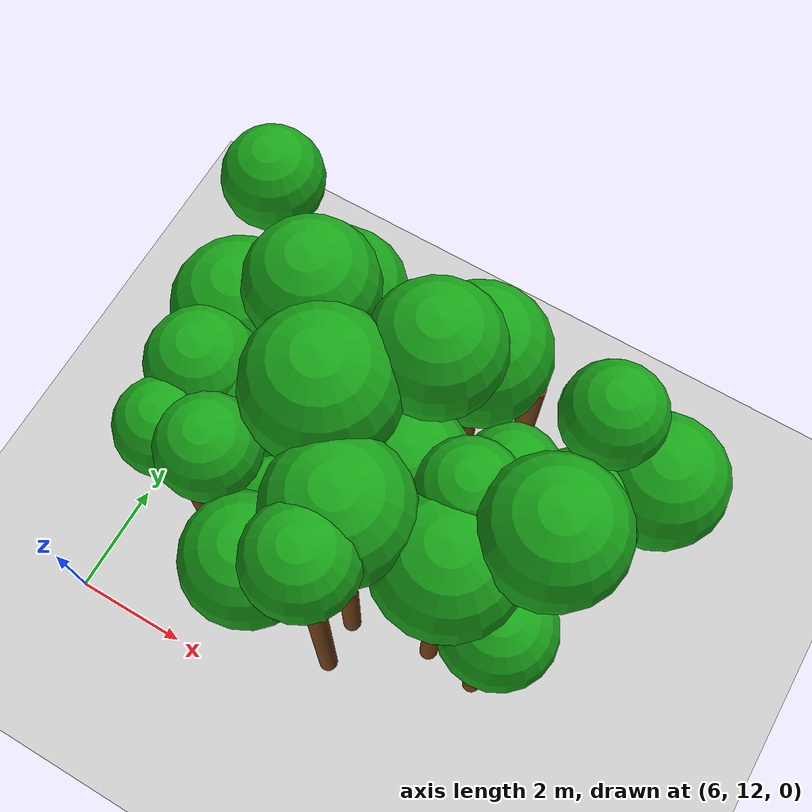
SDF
<sdf version="1.6">
 <world name="forest_world">
  <include><uri>model://sun</uri></include>
  <include><uri>model://ground_plane</uri></include>
  <model name="tree_1887_trunk">
   <static>true</static>
   <pose>7.58 14.00 2.63 0 0 0</pose>
   <link name="link">
    <collision name="collision">
     <geometry><cylinder><radius>0.16</radius><length>5.26</length></cylinder></geometry>
    </collision>
    <visual name="visual">
     <geometry><cylinder><radius>0.16</radius><length>5.26</length></cylinder></geometry>
     <material><ambient>0.35 0.20 0.05 1</ambient><diffuse>0.45 0.25 0.08 1</diffuse></material>
    </visual>
   </link>
  </model>
  <model name="tree_1887_leaf">
   <static>true</static>
   <pose>7.58 14.00 5.69 0 0 0</pose>
   <link name="link">
    <collision name="collision"><geometry><sphere><radius>0.73</radius></sphere></geometry></collision>
    <visual name="visual">
     <geometry><sphere><radius>0.73</radius></sphere></geometry>
     <material><ambient>0.05 0.45 0.05 1</ambient><diffuse>0.10 0.65 0.10 1</diffuse></material>
    </visual>
   </link>
  </model>
  <model name="tree_1888_trunk">
   <static>true</static>
   <pose>7.55 15.04 2.60 0 0 0</pose>
   <link name="link">
    <collision name="collision">
     <geometry><cylinder><radius>0.16</radius><length>5.20</length></cylinder></geometry>
    </collision>
    <visual name="visual">
     <geometry><cylinder><radius>0.16</radius><length>5.20</length></cylinder></geometry>
     <material><ambient>0.35 0.20 0.05 1</ambient><diffuse>0.45 0.25 0.08 1</diffuse></material>
    </visual>
   </link>
  </model>
  <model name="tree_1888_leaf">
   <static>true</static>
   <pose>7.55 15.04 5.72 0 0 0</pose>
   <link name="link">
    <collision name="collision"><geometry><sphere><radius>0.86</radius></sphere></geometry></collision>
    <visual name="visual">
     <geometry><sphere><radius>0.86</radius></sphere></geometry>
     <material><ambient>0.05 0.45 0.05 1</ambient><diffuse>0.10 0.65 0.10 1</diffuse></material>
    </visual>
   </link>
  </model>
  <model name="tree_1889_trunk">
   <static>true</static>
   <pose>7.40 16.20 2.35 0 0 0</pose>
   <link name="link">
    <collision name="collision">
     <geometry><cylinder><radius>0.16</radius><length>4.70</length></cylinder></geometry>
    </collision>
    <visual name="visual">
     <geometry><cylinder><radius>0.16</radius><length>4.70</length></cylinder></geometry>
     <material><ambient>0.35 0.20 0.05 1</ambient><diffuse>0.45 0.25 0.08 1</diffuse></material>
    </visual>
   </link>
  </model>
  <model name="tree_1889_leaf">
   <static>true</static>
   <pose>7.40 16.20 5.34 0 0 0</pose>
   <link name="link">
    <collision name="collision"><geometry><sphere><radius>1.07</radius></sphere></geometry></collision>
    <visual name="visual">
     <geometry><sphere><radius>1.07</radius></sphere></geometry>
     <material><ambient>0.05 0.45 0.05 1</ambient><diffuse>0.10 0.65 0.10 1</diffuse></material>
    </visual>
   </link>
  </model>
  <model name="tree_1890_trunk">
   <static>true</static>
   <pose>7.43 17.33 3.44 0 0 0</pose>
   <link name="link">
    <collision name="collision">
     <geometry><cylinder><radius>0.16</radius><length>6.88</length></cylinder></geometry>
    </collision>
    <visual name="visual">
     <geometry><cylinder><radius>0.16</radius><length>6.88</length></cylinder></geometry>
     <material><ambient>0.35 0.20 0.05 1</ambient><diffuse>0.45 0.25 0.08 1</diffuse></material>
    </visual>
   </link>
  </model>
  <model name="tree_1890_leaf">
   <static>true</static>
   <pose>7.43 17.33 7.31 0 0 0</pose>
   <link name="link">
    <collision name="collision"><geometry><sphere><radius>0.71</radius></sphere></geometry></collision>
    <visual name="visual">
     <geometry><sphere><radius>0.71</radius></sphere></geometry>
     <material><ambient>0.05 0.45 0.05 1</ambient><diffuse>0.10 0.65 0.10 1</diffuse></material>
    </visual>
   </link>
  </model>
  <model name="tree_1942_trunk">
   <static>true</static>
   <pose>8.38 13.97 2.79 0 0 0</pose>
   <link name="link">
    <collision name="collision">
     <geometry><cylinder><radius>0.16</radius><length>5.58</length></cylinder></geometry>
    </collision>
    <visual name="visual">
     <geometry><cylinder><radius>0.16</radius><length>5.58</length></cylinder></geometry>
     <material><ambient>0.35 0.20 0.05 1</ambient><diffuse>0.45 0.25 0.08 1</diffuse></material>
    </visual>
   </link>
  </model>
  <model name="tree_1942_leaf">
   <static>true</static>
   <pose>8.38 13.97 6.04 0 0 0</pose>
   <link name="link">
    <collision name="collision"><geometry><sphere><radius>0.76</radius></sphere></geometry></collision>
    <visual name="visual">
     <geometry><sphere><radius>0.76</radius></sphere></geometry>
     <material><ambient>0.05 0.45 0.05 1</ambient><diffuse>0.10 0.65 0.10 1</diffuse></material>
    </visual>
   </link>
  </model>
  <model name="tree_1943_trunk">
   <static>true</static>
   <pose>8.61 15.15 2.34 0 0 0</pose>
   <link name="link">
    <collision name="collision">
     <geometry><cylinder><radius>0.16</radius><length>4.67</length></cylinder></geometry>
    </collision>
    <visual name="visual">
     <geometry><cylinder><radius>0.16</radius><length>4.67</length></cylinder></geometry>
     <material><ambient>0.35 0.20 0.05 1</ambient><diffuse>0.45 0.25 0.08 1</diffuse></material>
    </visual>
   </link>
  </model>
  <model name="tree_1943_leaf">
   <static>true</static>
   <pose>8.61 15.15 5.30 0 0 0</pose>
   <link name="link">
    <collision name="collision"><geometry><sphere><radius>1.04</radius></sphere></geometry></collision>
    <visual name="visual">
     <geometry><sphere><radius>1.04</radius></sphere></geometry>
     <material><ambient>0.05 0.45 0.05 1</ambient><diffuse>0.10 0.65 0.10 1</diffuse></material>
    </visual>
   </link>
  </model>
  <model name="tree_1944_trunk">
   <static>true</static>
   <pose>8.66 16.29 3.29 0 0 0</pose>
   <link name="link">
    <collision name="collision">
     <geometry><cylinder><radius>0.16</radius><length>6.57</length></cylinder></geometry>
    </collision>
    <visual name="visual">
     <geometry><cylinder><radius>0.16</radius><length>6.57</length></cylinder></geometry>
     <material><ambient>0.35 0.20 0.05 1</ambient><diffuse>0.45 0.25 0.08 1</diffuse></material>
    </visual>
   </link>
  </model>
  <model name="tree_1944_leaf">
   <static>true</static>
   <pose>8.66 16.29 7.13 0 0 0</pose>
   <link name="link">
    <collision name="collision"><geometry><sphere><radius>0.94</radius></sphere></geometry></collision>
    <visual name="visual">
     <geometry><sphere><radius>0.94</radius></sphere></geometry>
     <material><ambient>0.05 0.45 0.05 1</ambient><diffuse>0.10 0.65 0.10 1</diffuse></material>
    </visual>
   </link>
  </model>
  <model name="tree_1945_trunk">
   <static>true</static>
   <pose>8.46 17.16 2.23 0 0 0</pose>
   <link name="link">
    <collision name="collision">
     <geometry><cylinder><radius>0.16</radius><length>4.46</length></cylinder></geometry>
    </collision>
    <visual name="visual">
     <geometry><cylinder><radius>0.16</radius><length>4.46</length></cylinder></geometry>
     <material><ambient>0.35 0.20 0.05 1</ambient><diffuse>0.45 0.25 0.08 1</diffuse></material>
    </visual>
   </link>
  </model>
  <model name="tree_1945_leaf">
   <static>true</static>
   <pose>8.46 17.16 5.11 0 0 0</pose>
   <link name="link">
    <collision name="collision"><geometry><sphere><radius>1.09</radius></sphere></geometry></collision>
    <visual name="visual">
     <geometry><sphere><radius>1.09</radius></sphere></geometry>
     <material><ambient>0.05 0.45 0.05 1</ambient><diffuse>0.10 0.65 0.10 1</diffuse></material>
    </visual>
   </link>
  </model>
  <model name="tree_1996_leaf">
   <static>true</static>
   <pose>9.57 13.00 5.59 0 0 0</pose>
   <link name="link">
    <collision name="collision"><geometry><sphere><radius>0.95</radius></sphere></geometry></collision>
    <visual name="visual">
     <geometry><sphere><radius>0.95</radius></sphere></geometry>
     <material><ambient>0.05 0.45 0.05 1</ambient><diffuse>0.10 0.65 0.10 1</diffuse></material>
    </visual>
   </link>
  </model>
  <model name="tree_1997_trunk">
   <static>true</static>
   <pose>9.58 13.87 2.16 0 0 0</pose>
   <link name="link">
    <collision name="collision">
     <geometry><cylinder><radius>0.16</radius><length>4.32</length></cylinder></geometry>
    </collision>
    <visual name="visual">
     <geometry><cylinder><radius>0.16</radius><length>4.32</length></cylinder></geometry>
     <material><ambient>0.35 0.20 0.05 1</ambient><diffuse>0.45 0.25 0.08 1</diffuse></material>
    </visual>
   </link>
  </model>
  <model name="tree_1997_leaf">
   <static>true</static>
   <pose>9.58 13.87 4.96 0 0 0</pose>
   <link name="link">
    <collision name="collision"><geometry><sphere><radius>1.06</radius></sphere></geometry></collision>
    <visual name="visual">
     <geometry><sphere><radius>1.06</radius></sphere></geometry>
     <material><ambient>0.05 0.45 0.05 1</ambient><diffuse>0.10 0.65 0.10 1</diffuse></material>
    </visual>
   </link>
  </model>
  <model name="tree_1998_trunk">
   <static>true</static>
   <pose>9.57 15.07 3.34 0 0 0</pose>
   <link name="link">
    <collision name="collision">
     <geometry><cylinder><radius>0.16</radius><length>6.69</length></cylinder></geometry>
    </collision>
    <visual name="visual">
     <geometry><cylinder><radius>0.16</radius><length>6.69</length></cylinder></geometry>
     <material><ambient>0.35 0.20 0.05 1</ambient><diffuse>0.45 0.25 0.08 1</diffuse></material>
    </visual>
   </link>
  </model>
  <model name="tree_1998_leaf">
   <static>true</static>
   <pose>9.57 15.07 7.34 0 0 0</pose>
   <link name="link">
    <collision name="collision"><geometry><sphere><radius>1.08</radius></sphere></geometry></collision>
    <visual name="visual">
     <geometry><sphere><radius>1.08</radius></sphere></geometry>
     <material><ambient>0.05 0.45 0.05 1</ambient><diffuse>0.10 0.65 0.10 1</diffuse></material>
    </visual>
   </link>
  </model>
  <model name="tree_1999_trunk">
   <static>true</static>
   <pose>9.44 16.06 2.03 0 0 0</pose>
   <link name="link">
    <collision name="collision">
     <geometry><cylinder><radius>0.16</radius><length>4.06</length></cylinder></geometry>
    </collision>
    <visual name="visual">
     <geometry><cylinder><radius>0.16</radius><length>4.06</length></cylinder></geometry>
     <material><ambient>0.35 0.20 0.05 1</ambient><diffuse>0.45 0.25 0.08 1</diffuse></material>
    </visual>
   </link>
  </model>
  <model name="tree_1999_leaf">
   <static>true</static>
   <pose>9.44 16.06 4.63 0 0 0</pose>
   <link name="link">
    <collision name="collision"><geometry><sphere><radius>0.96</radius></sphere></geometry></collision>
    <visual name="visual">
     <geometry><sphere><radius>0.96</radius></sphere></geometry>
     <material><ambient>0.05 0.45 0.05 1</ambient><diffuse>0.10 0.65 0.10 1</diffuse></material>
    </visual>
   </link>
  </model>
  <model name="tree_2051_trunk">
   <static>true</static>
   <pose>10.53 13.03 3.47 0 0 0</pose>
   <link name="link">
    <collision name="collision">
     <geometry><cylinder><radius>0.16</radius><length>6.93</length></cylinder></geometry>
    </collision>
    <visual name="visual">
     <geometry><cylinder><radius>0.16</radius><length>6.93</length></cylinder></geometry>
     <material><ambient>0.35 0.20 0.05 1</ambient><diffuse>0.45 0.25 0.08 1</diffuse></material>
    </visual>
   </link>
  </model>
  <model name="tree_2051_leaf">
   <static>true</static>
   <pose>10.53 13.03 7.40 0 0 0</pose>
   <link name="link">
    <collision name="collision"><geometry><sphere><radius>0.77</radius></sphere></geometry></collision>
    <visual name="visual">
     <geometry><sphere><radius>0.77</radius></sphere></geometry>
     <material><ambient>0.05 0.45 0.05 1</ambient><diffuse>0.10 0.65 0.10 1</diffuse></material>
    </visual>
   </link>
  </model>
  <model name="tree_2052_trunk">
   <static>true</static>
   <pose>10.53 13.85 3.24 0 0 0</pose>
   <link name="link">
    <collision name="collision">
     <geometry><cylinder><radius>0.16</radius><length>6.48</length></cylinder></geometry>
    </collision>
    <visual name="visual">
     <geometry><cylinder><radius>0.16</radius><length>6.48</length></cylinder></geometry>
     <material><ambient>0.35 0.20 0.05 1</ambient><diffuse>0.45 0.25 0.08 1</diffuse></material>
    </visual>
   </link>
  </model>
  <model name="tree_2052_leaf">
   <static>true</static>
   <pose>10.53 13.85 7.09 0 0 0</pose>
   <link name="link">
    <collision name="collision"><geometry><sphere><radius>1.01</radius></sphere></geometry></collision>
    <visual name="visual">
     <geometry><sphere><radius>1.01</radius></sphere></geometry>
     <material><ambient>0.05 0.45 0.05 1</ambient><diffuse>0.10 0.65 0.10 1</diffuse></material>
    </visual>
   </link>
  </model>
  <model name="tree_2053_trunk">
   <static>true</static>
   <pose>10.72 15.27 2.35 0 0 0</pose>
   <link name="link">
    <collision name="collision">
     <geometry><cylinder><radius>0.16</radius><length>4.70</length></cylinder></geometry>
    </collision>
    <visual name="visual">
     <geometry><cylinder><radius>0.16</radius><length>4.70</length></cylinder></geometry>
     <material><ambient>0.35 0.20 0.05 1</ambient><diffuse>0.45 0.25 0.08 1</diffuse></material>
    </visual>
   </link>
  </model>
  <model name="tree_2053_leaf">
   <static>true</static>
   <pose>10.72 15.27 5.29 0 0 0</pose>
   <link name="link">
    <collision name="collision"><geometry><sphere><radius>0.99</radius></sphere></geometry></collision>
    <visual name="visual">
     <geometry><sphere><radius>0.99</radius></sphere></geometry>
     <material><ambient>0.05 0.45 0.05 1</ambient><diffuse>0.10 0.65 0.10 1</diffuse></material>
    </visual>
   </link>
  </model>
  <model name="tree_2054_trunk">
   <static>true</static>
   <pose>10.57 16.21 3.43 0 0 0</pose>
   <link name="link">
    <collision name="collision">
     <geometry><cylinder><radius>0.16</radius><length>6.87</length></cylinder></geometry>
    </collision>
    <visual name="visual">
     <geometry><cylinder><radius>0.16</radius><length>6.87</length></cylinder></geometry>
     <material><ambient>0.35 0.20 0.05 1</ambient><diffuse>0.45 0.25 0.08 1</diffuse></material>
    </visual>
   </link>
  </model>
  <model name="tree_2054_leaf">
   <static>true</static>
   <pose>10.57 16.21 7.43 0 0 0</pose>
   <link name="link">
    <collision name="collision"><geometry><sphere><radius>0.93</radius></sphere></geometry></collision>
    <visual name="visual">
     <geometry><sphere><radius>0.93</radius></sphere></geometry>
     <material><ambient>0.05 0.45 0.05 1</ambient><diffuse>0.10 0.65 0.10 1</diffuse></material>
    </visual>
   </link>
  </model>
  <model name="tree_2055_trunk">
   <static>true</static>
   <pose>10.77 17.30 2.36 0 0 0</pose>
   <link name="link">
    <collision name="collision">
     <geometry><cylinder><radius>0.16</radius><length>4.72</length></cylinder></geometry>
    </collision>
    <visual name="visual">
     <geometry><cylinder><radius>0.16</radius><length>4.72</length></cylinder></geometry>
     <material><ambient>0.35 0.20 0.05 1</ambient><diffuse>0.45 0.25 0.08 1</diffuse></material>
    </visual>
   </link>
  </model>
  <model name="tree_2055_leaf">
   <static>true</static>
   <pose>10.77 17.30 5.38 0 0 0</pose>
   <link name="link">
    <collision name="collision"><geometry><sphere><radius>1.09</radius></sphere></geometry></collision>
    <visual name="visual">
     <geometry><sphere><radius>1.09</radius></sphere></geometry>
     <material><ambient>0.05 0.45 0.05 1</ambient><diffuse>0.10 0.65 0.10 1</diffuse></material>
    </visual>
   </link>
  </model>
  <model name="tree_2107_trunk">
   <static>true</static>
   <pose>11.96 14.10 2.91 0 0 0</pose>
   <link name="link">
    <collision name="collision">
     <geometry><cylinder><radius>0.16</radius><length>5.82</length></cylinder></geometry>
    </collision>
    <visual name="visual">
     <geometry><cylinder><radius>0.16</radius><length>5.82</length></cylinder></geometry>
     <material><ambient>0.35 0.20 0.05 1</ambient><diffuse>0.45 0.25 0.08 1</diffuse></material>
    </visual>
   </link>
  </model>
  <model name="tree_2107_leaf">
   <static>true</static>
   <pose>11.96 14.10 6.45 0 0 0</pose>
   <link name="link">
    <collision name="collision"><geometry><sphere><radius>1.04</radius></sphere></geometry></collision>
    <visual name="visual">
     <geometry><sphere><radius>1.04</radius></sphere></geometry>
     <material><ambient>0.05 0.45 0.05 1</ambient><diffuse>0.10 0.65 0.10 1</diffuse></material>
    </visual>
   </link>
  </model>
  <model name="tree_2108_trunk">
   <static>true</static>
   <pose>11.78 14.95 3.19 0 0 0</pose>
   <link name="link">
    <collision name="collision">
     <geometry><cylinder><radius>0.16</radius><length>6.39</length></cylinder></geometry>
    </collision>
    <visual name="visual">
     <geometry><cylinder><radius>0.16</radius><length>6.39</length></cylinder></geometry>
     <material><ambient>0.35 0.20 0.05 1</ambient><diffuse>0.45 0.25 0.08 1</diffuse></material>
    </visual>
   </link>
  </model>
  <model name="tree_2108_leaf">
   <static>true</static>
   <pose>11.78 14.95 6.82 0 0 0</pose>
   <link name="link">
    <collision name="collision"><geometry><sphere><radius>0.72</radius></sphere></geometry></collision>
    <visual name="visual">
     <geometry><sphere><radius>0.72</radius></sphere></geometry>
     <material><ambient>0.05 0.45 0.05 1</ambient><diffuse>0.10 0.65 0.10 1</diffuse></material>
    </visual>
   </link>
  </model>
  <model name="tree_2109_trunk">
   <static>true</static>
   <pose>11.98 16.14 2.13 0 0 0</pose>
   <link name="link">
    <collision name="collision">
     <geometry><cylinder><radius>0.16</radius><length>4.26</length></cylinder></geometry>
    </collision>
    <visual name="visual">
     <geometry><cylinder><radius>0.16</radius><length>4.26</length></cylinder></geometry>
     <material><ambient>0.35 0.20 0.05 1</ambient><diffuse>0.45 0.25 0.08 1</diffuse></material>
    </visual>
   </link>
  </model>
  <model name="tree_2109_leaf">
   <static>true</static>
   <pose>11.98 16.14 4.72 0 0 0</pose>
   <link name="link">
    <collision name="collision"><geometry><sphere><radius>0.77</radius></sphere></geometry></collision>
    <visual name="visual">
     <geometry><sphere><radius>0.77</radius></sphere></geometry>
     <material><ambient>0.05 0.45 0.05 1</ambient><diffuse>0.10 0.65 0.10 1</diffuse></material>
    </visual>
   </link>
  </model>
  <model name="tree_2110_trunk">
   <static>true</static>
   <pose>11.70 17.34 2.56 0 0 0</pose>
   <link name="link">
    <collision name="collision">
     <geometry><cylinder><radius>0.16</radius><length>5.13</length></cylinder></geometry>
    </collision>
    <visual name="visual">
     <geometry><cylinder><radius>0.16</radius><length>5.13</length></cylinder></geometry>
     <material><ambient>0.35 0.20 0.05 1</ambient><diffuse>0.45 0.25 0.08 1</diffuse></material>
    </visual>
   </link>
  </model>
  <model name="tree_2162_trunk">
   <static>true</static>
   <pose>12.89 13.98 2.27 0 0 0</pose>
   <link name="link">
    <collision name="collision">
     <geometry><cylinder><radius>0.16</radius><length>4.53</length></cylinder></geometry>
    </collision>
    <visual name="visual">
     <geometry><cylinder><radius>0.16</radius><length>4.53</length></cylinder></geometry>
     <material><ambient>0.35 0.20 0.05 1</ambient><diffuse>0.45 0.25 0.08 1</diffuse></material>
    </visual>
   </link>
  </model>
  <model name="tree_2162_leaf">
   <static>true</static>
   <pose>12.89 13.98 5.05 0 0 0</pose>
   <link name="link">
    <collision name="collision"><geometry><sphere><radius>0.86</radius></sphere></geometry></collision>
    <visual name="visual">
     <geometry><sphere><radius>0.86</radius></sphere></geometry>
     <material><ambient>0.05 0.45 0.05 1</ambient><diffuse>0.10 0.65 0.10 1</diffuse></material>
    </visual>
   </link>
  </model>
  <model name="tree_2163_trunk">
   <static>true</static>
   <pose>12.94 14.92 3.26 0 0 0</pose>
   <link name="link">
    <collision name="collision">
     <geometry><cylinder><radius>0.16</radius><length>6.53</length></cylinder></geometry>
    </collision>
    <visual name="visual">
     <geometry><cylinder><radius>0.16</radius><length>6.53</length></cylinder></geometry>
     <material><ambient>0.35 0.20 0.05 1</ambient><diffuse>0.45 0.25 0.08 1</diffuse></material>
    </visual>
   </link>
  </model>
  <model name="tree_2163_leaf">
   <static>true</static>
   <pose>12.94 14.92 7.13 0 0 0</pose>
   <link name="link">
    <collision name="collision"><geometry><sphere><radius>1.00</radius></sphere></geometry></collision>
    <visual name="visual">
     <geometry><sphere><radius>1.00</radius></sphere></geometry>
     <material><ambient>0.05 0.45 0.05 1</ambient><diffuse>0.10 0.65 0.10 1</diffuse></material>
    </visual>
   </link>
  </model>
  <model name="tree_2164_trunk">
   <static>true</static>
   <pose>13.07 16.14 2.03 0 0 0</pose>
   <link name="link">
    <collision name="collision">
     <geometry><cylinder><radius>0.16</radius><length>4.07</length></cylinder></geometry>
    </collision>
    <visual name="visual">
     <geometry><cylinder><radius>0.16</radius><length>4.07</length></cylinder></geometry>
     <material><ambient>0.35 0.20 0.05 1</ambient><diffuse>0.45 0.25 0.08 1</diffuse></material>
    </visual>
   </link>
  </model>
  <model name="tree_2164_leaf">
   <static>true</static>
   <pose>13.07 16.14 4.64 0 0 0</pose>
   <link name="link">
    <collision name="collision"><geometry><sphere><radius>0.95</radius></sphere></geometry></collision>
    <visual name="visual">
     <geometry><sphere><radius>0.95</radius></sphere></geometry>
     <material><ambient>0.05 0.45 0.05 1</ambient><diffuse>0.10 0.65 0.10 1</diffuse></material>
    </visual>
   </link>
  </model>
  <model name="tree_2165_trunk">
   <static>true</static>
   <pose>12.87 17.15 2.78 0 0 0</pose>
   <link name="link">
    <collision name="collision">
     <geometry><cylinder><radius>0.16</radius><length>5.56</length></cylinder></geometry>
    </collision>
    <visual name="visual">
     <geometry><cylinder><radius>0.16</radius><length>5.56</length></cylinder></geometry>
     <material><ambient>0.35 0.20 0.05 1</ambient><diffuse>0.45 0.25 0.08 1</diffuse></material>
    </visual>
   </link>
  </model>
  <model name="tree_2165_leaf">
   <static>true</static>
   <pose>12.87 17.15 6.02 0 0 0</pose>
   <link name="link">
    <collision name="collision"><geometry><sphere><radius>0.77</radius></sphere></geometry></collision>
    <visual name="visual">
     <geometry><sphere><radius>0.77</radius></sphere></geometry>
     <material><ambient>0.05 0.45 0.05 1</ambient><diffuse>0.10 0.65 0.10 1</diffuse></material>
    </visual>
   </link>
  </model>
  <model name="tree_2220_trunk">
   <static>true</static>
   <pose>13.88 17.15 2.03 0 0 0</pose>
   <link name="link">
    <collision name="collision">
     <geometry><cylinder><radius>0.16</radius><length>4.07</length></cylinder></geometry>
    </collision>
    <visual name="visual">
     <geometry><cylinder><radius>0.16</radius><length>4.07</length></cylinder></geometry>
     <material><ambient>0.35 0.20 0.05 1</ambient><diffuse>0.45 0.25 0.08 1</diffuse></material>
    </visual>
   </link>
  </model>
  <model name="tree_2220_leaf">
   <static>true</static>
   <pose>13.88 17.15 4.68 0 0 0</pose>
   <link name="link">
    <collision name="collision"><geometry><sphere><radius>1.03</radius></sphere></geometry></collision>
    <visual name="visual">
     <geometry><sphere><radius>1.03</radius></sphere></geometry>
     <material><ambient>0.05 0.45 0.05 1</ambient><diffuse>0.10 0.65 0.10 1</diffuse></material>
    </visual>
   </link>
  </model>
 </world>
</sdf>
